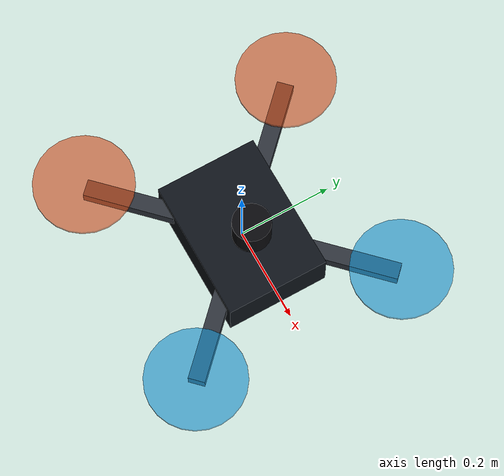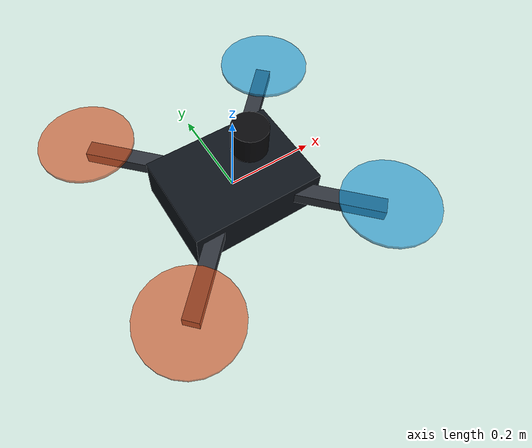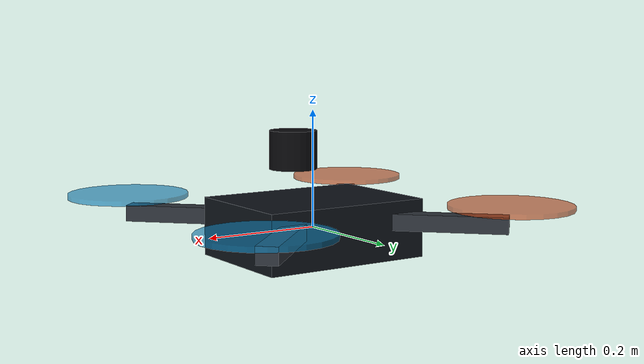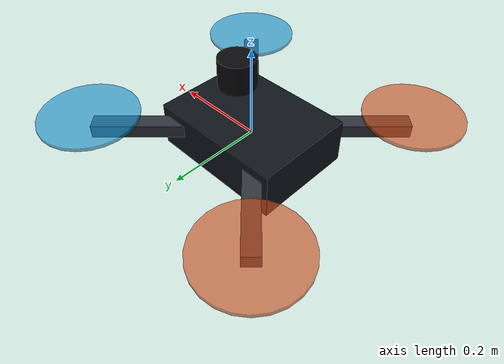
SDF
<?xml version="1.0"?>
<sdf version="1.10">
  <model name="xq_iris_mid360" canonical_link="xq_base_link">
    <static>false</static>
    <self_collide>false</self_collide>
    <allow_auto_disable>false</allow_auto_disable>

    <link name="xq_base_link">
      <gravity>false</gravity>
      <inertial>
        <mass>1.40</mass>
        <inertia>
          <ixx>0.030</ixx>
          <ixy>0.0</ixy>
          <ixz>0.0</ixz>
          <iyy>0.030</iyy>
          <iyz>0.0</iyz>
          <izz>0.055</izz>
        </inertia>
      </inertial>

      <collision name="xq_body_collision">
        <geometry>
          <box>
            <size>0.30 0.22 0.10</size>
          </box>
        </geometry>
      </collision>
      <visual name="xq_body_visual">
        <geometry>
          <box>
            <size>0.30 0.22 0.10</size>
          </box>
        </geometry>
        <material>
          <ambient>0.035 0.045 0.060 1</ambient>
          <diffuse>0.055 0.075 0.100 1</diffuse>
          <specular>0.35 0.35 0.35 1</specular>
        </material>
      </visual>

      <collision name="xq_arm_ne_sw_collision">
        <pose>0 0 0.015 0 0 0.78539816339</pose>
        <geometry>
          <box>
            <size>0.66 0.035 0.028</size>
          </box>
        </geometry>
      </collision>
      <visual name="xq_arm_ne_sw_visual">
        <pose>0 0 0.015 0 0 0.78539816339</pose>
        <geometry>
          <box>
            <size>0.66 0.035 0.028</size>
          </box>
        </geometry>
        <material>
          <ambient>0.12 0.13 0.15 1</ambient>
          <diffuse>0.18 0.20 0.23 1</diffuse>
        </material>
      </visual>

      <collision name="xq_arm_nw_se_collision">
        <pose>0 0 0.015 0 0 -0.78539816339</pose>
        <geometry>
          <box>
            <size>0.66 0.035 0.028</size>
          </box>
        </geometry>
      </collision>
      <visual name="xq_arm_nw_se_visual">
        <pose>0 0 0.015 0 0 -0.78539816339</pose>
        <geometry>
          <box>
            <size>0.66 0.035 0.028</size>
          </box>
        </geometry>
        <material>
          <ambient>0.12 0.13 0.15 1</ambient>
          <diffuse>0.18 0.20 0.23 1</diffuse>
        </material>
      </visual>

      <visual name="xq_rotor_front_left_visual">
        <pose>0.235 0.235 0.045 0 0 0</pose>
        <geometry>
          <cylinder>
            <radius>0.105</radius>
            <length>0.008</length>
          </cylinder>
        </geometry>
        <transparency>0.35</transparency>
        <material>
          <ambient>0.08 0.55 0.78 1</ambient>
          <diffuse>0.08 0.55 0.78 1</diffuse>
        </material>
      </visual>
      <visual name="xq_rotor_front_right_visual">
        <pose>0.235 -0.235 0.045 0 0 0</pose>
        <geometry>
          <cylinder>
            <radius>0.105</radius>
            <length>0.008</length>
          </cylinder>
        </geometry>
        <transparency>0.35</transparency>
        <material>
          <ambient>0.08 0.55 0.78 1</ambient>
          <diffuse>0.08 0.55 0.78 1</diffuse>
        </material>
      </visual>
      <visual name="xq_rotor_rear_left_visual">
        <pose>-0.235 0.235 0.045 0 0 0</pose>
        <geometry>
          <cylinder>
            <radius>0.105</radius>
            <length>0.008</length>
          </cylinder>
        </geometry>
        <transparency>0.35</transparency>
        <material>
          <ambient>0.78 0.29 0.10 1</ambient>
          <diffuse>0.78 0.29 0.10 1</diffuse>
        </material>
      </visual>
      <visual name="xq_rotor_rear_right_visual">
        <pose>-0.235 -0.235 0.045 0 0 0</pose>
        <geometry>
          <cylinder>
            <radius>0.105</radius>
            <length>0.008</length>
          </cylinder>
        </geometry>
        <transparency>0.35</transparency>
        <material>
          <ambient>0.78 0.29 0.10 1</ambient>
          <diffuse>0.78 0.29 0.10 1</diffuse>
        </material>
      </visual>
    </link>

    <link name="xq_mid360_link">
      <pose relative_to="xq_base_link">0.04 0 0.135 0 0 0</pose>
      <gravity>false</gravity>
      <inertial>
        <mass>0.265</mass>
        <inertia>
          <ixx>0.00045</ixx>
          <ixy>0.0</ixy>
          <ixz>0.0</ixz>
          <iyy>0.00045</iyy>
          <iyz>0.0</iyz>
          <izz>0.00055</izz>
        </inertia>
      </inertial>
      <collision name="xq_mid360_collision">
        <geometry>
          <cylinder>
            <radius>0.040</radius>
            <length>0.065</length>
          </cylinder>
        </geometry>
      </collision>
      <visual name="xq_mid360_visual">
        <geometry>
          <cylinder>
            <radius>0.040</radius>
            <length>0.065</length>
          </cylinder>
        </geometry>
        <material>
          <ambient>0.02 0.02 0.025 1</ambient>
          <diffuse>0.035 0.035 0.045 1</diffuse>
          <specular>0.55 0.55 0.55 1</specular>
        </material>
      </visual>

      <!-- MID-360-like aggregate raster: 720 x 32 x 10 Hz ~= 230 kpoints/s. -->
      <sensor name="xq_mid360_lidar" type="gpu_lidar">
        <!-- Gazebo publishes LaserScan here and PointCloudPacked on /points. -->
        <topic>/xq/lidar</topic>
        <always_on>true</always_on>
        <update_rate>10</update_rate>
        <visualize>false</visualize>
        <lidar>
          <scan>
            <horizontal>
              <samples>720</samples>
              <resolution>1</resolution>
              <min_angle>-3.14159265359</min_angle>
              <max_angle>3.14159265359</max_angle>
            </horizontal>
            <vertical>
              <samples>32</samples>
              <resolution>1</resolution>
              <min_angle>-0.12217304764</min_angle>
              <max_angle>0.90757121104</max_angle>
            </vertical>
          </scan>
          <range>
            <min>0.10</min>
            <max>40.0</max>
            <resolution>0.02</resolution>
          </range>
          <noise>
            <type>gaussian</type>
            <mean>0.0</mean>
            <stddev>0.015</stddev>
          </noise>
        </lidar>
      </sensor>
    </link>

    <joint name="xq_mid360_joint" type="fixed">
      <parent>xq_base_link</parent>
      <child>xq_mid360_link</child>
    </joint>

    <link name="xq_imu_link">
      <pose relative_to="xq_base_link">0 0 0.015 0 0 0</pose>
      <gravity>false</gravity>
      <inertial>
        <mass>0.020</mass>
        <inertia>
          <ixx>0.00001</ixx>
          <ixy>0.0</ixy>
          <ixz>0.0</ixz>
          <iyy>0.00001</iyy>
          <iyz>0.0</iyz>
          <izz>0.00001</izz>
        </inertia>
      </inertial>
      <sensor name="xq_imu_sensor" type="imu">
        <topic>/xq/imu</topic>
        <always_on>true</always_on>
        <update_rate>200</update_rate>
        <imu>
          <angular_velocity>
            <x><noise type="gaussian"><mean>0</mean><stddev>0.00020</stddev></noise></x>
            <y><noise type="gaussian"><mean>0</mean><stddev>0.00020</stddev></noise></y>
            <z><noise type="gaussian"><mean>0</mean><stddev>0.00020</stddev></noise></z>
          </angular_velocity>
          <linear_acceleration>
            <x><noise type="gaussian"><mean>0</mean><stddev>0.0020</stddev></noise></x>
            <y><noise type="gaussian"><mean>0</mean><stddev>0.0020</stddev></noise></y>
            <z><noise type="gaussian"><mean>0</mean><stddev>0.0020</stddev></noise></z>
          </linear_acceleration>
        </imu>
      </sensor>
    </link>

    <joint name="xq_imu_joint" type="fixed">
      <parent>xq_base_link</parent>
      <child>xq_imu_link</child>
    </joint>

    <plugin filename="gz-sim-velocity-control-system"
            name="gz::sim::systems::VelocityControl">
      <initial_linear>0 0 0</initial_linear>
      <initial_angular>0 0 0</initial_angular>
    </plugin>

    <plugin filename="gz-sim-odometry-publisher-system"
            name="gz::sim::systems::OdometryPublisher">
      <dimensions>3</dimensions>
      <odom_publish_frequency>50</odom_publish_frequency>
      <odom_frame>xq_world</odom_frame>
      <robot_base_frame>xq_base_link</robot_base_frame>
    </plugin>
  </model>
</sdf>
